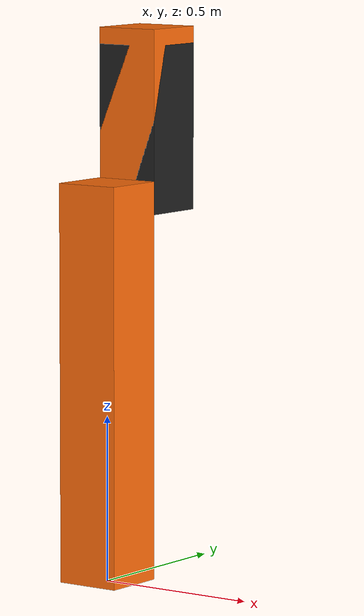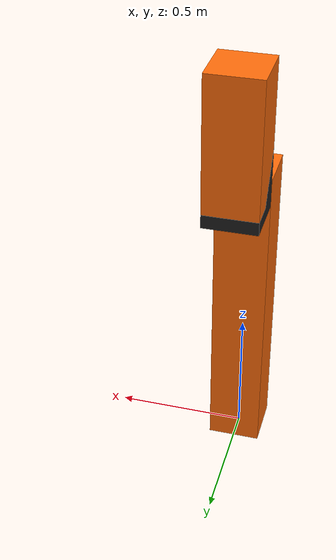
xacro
<?xml version="1.0"?>

<robot name="sensor" xmlns:xacro="http://www.ros.org/wiki/xacro">
  <xacro:property name="height1" value="1.2" />
  <xacro:property name="height2" value="0.5" />
  <xacro:property name="width" value="0.2" />
  <xacro:property name="mass" value="1" />
  <xacro:property name="axel_offset" value="0.05" />
 <!-- Used for fixing robot to Gazebo 'base_link' -->
  <link name="world"/>

  <joint name="fixed" type="fixed">
    <parent link="world"/>
    <child link="link1"/>
  </joint>

  <!-- Base Link -->
  <link name="link1">
    <collision>
      <origin xyz="0 0 ${height1/2}" rpy="0 0 0"/>
      <geometry>
	<box size="${width} ${width} ${height1}"/>
      </geometry>
    </collision>

    <visual>
      <origin xyz="0 0 ${height1/2}" rpy="0 0 0"/>
      <geometry>
	<box size="${width} ${width} ${height1}"/>
      </geometry>
      <material name="orange"/>
    </visual>

    <inertial>
      <origin xyz="0 0 ${height1/2}" rpy="0 0 0"/>
      <mass value="${mass}"/>
      <inertia
	  ixx="${mass / 12.0 * (width*width + height1*height1)}" ixy="0.0" ixz="0.0"
	  iyy="${mass / 12.0 * (height1*height1 + width*width)}" iyz="0.0"
	  izz="${mass / 12.0 * (width*width + width*width)}"/>
    </inertial>
  </link>

  <joint name="joint1" type="continuous">
    <parent link="link1"/>
    <child link="link2"/>
    <origin xyz="0 ${width} ${height1 - axel_offset}" rpy="0 0 0"/>
    <axis xyz="0 1 0"/>
    <dynamics damping="0.001"/>
  </joint>

  <!-- Middle Link -->
  <link name="link2">
    <collision>
      <origin xyz="0 0 ${height2/2 - axel_offset}" rpy="0 0 0"/>
      <geometry>
	<box size="${width} ${width} ${height2}"/>
      </geometry>
    </collision>

    <visual>
      <origin xyz="0 0 ${height2/2 - axel_offset}" rpy="0 0 0"/>
      <geometry>
	<box size="${width} ${width} ${height2}"/>
      </geometry>
      <material name="black"/>
    </visual>

    <inertial>
      <origin xyz="0 0 ${height2/2 - axel_offset}" rpy="0 0 0"/>
      <mass value="${mass}"/>
      <inertia
	  ixx="${mass / 12.0 * (width*width + height2*height2)}" ixy="0.0" ixz="0.0"
	  iyy="${mass / 12.0 * (height2*height2 + width*width)}" iyz="0.0"
	  izz="${mass / 12.0 * (width*width + width*width)}"/>
    </inertial>
  </link>

 <!-- sensor Link -->
  <link name="sensor">
    <collision>
      <origin xyz="0 0 ${height2/2}" rpy="0 0 0"/>
      <geometry>
        <box size="${width} ${width} ${height2}"/>
      </geometry>
    </collision>

    <visual>
      <origin xyz="0 0 ${height2/2}" rpy="0 0 0"/>
      <geometry>
        <box size="${width} ${width} ${height2}"/>
      </geometry>
      <material name="orange"/>
    </visual>

    <inertial>
      <origin xyz="0 0 1" rpy="0 0 0"/>
      <mass value="1"/>
      <inertia
        ixx="1.0" ixy="0.0" ixz="0.0"
        iyy="1.0" iyz="0.0"
        izz="1.0"/>
    </inertial>
  </link>

  <joint name="joint2" type="fixed">
    <parent link="link2"/>
    <child link="sensor"/>
  </joint>

  <material name="orange">
    <color rgba="${255/255} ${108/255} ${10/255} 1.0"/>
  </material>
 <gazebo reference="sensor">
    <material>Gazebo/Orange</material>
  </gazebo>

  <gazebo>
   <sensor>
    <plugin name="imu_plugin" filename="libgazebo_ros_imu_sensor.so">
      <alwaysOn>true</alwaysOn>
      <bodyName>sensor</bodyName>
      <topicName>imu</topicName>
      <serviceName>imu_service</serviceName>
      <gaussianNoise>0.0</gaussianNoise>
      <updateRate>20.0</updateRate>
    </plugin>
    </sensor>
  </gazebo>

</robot>
